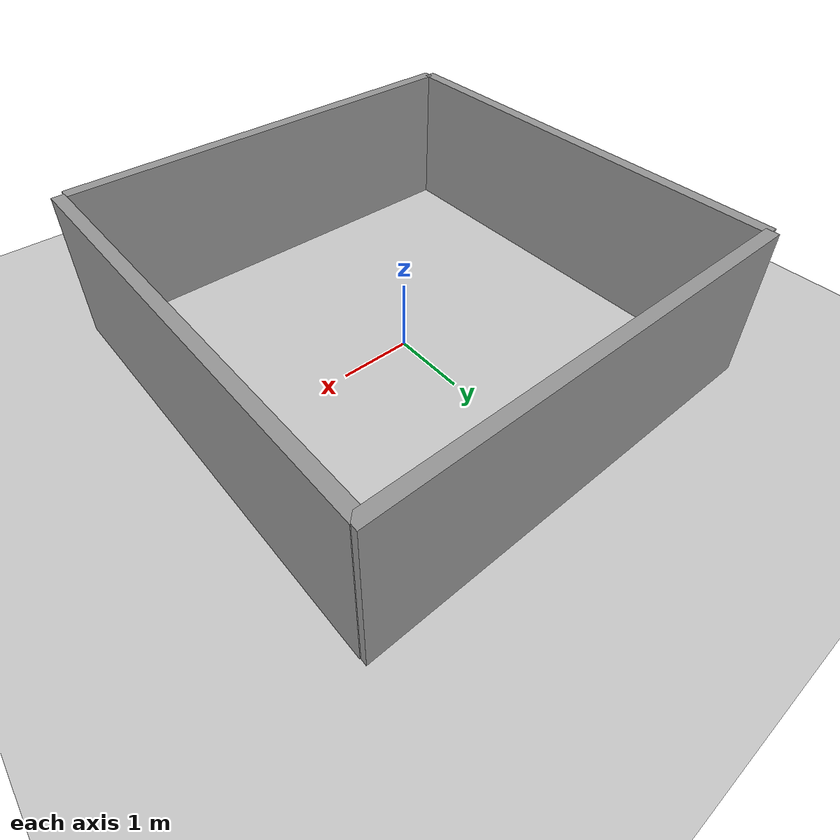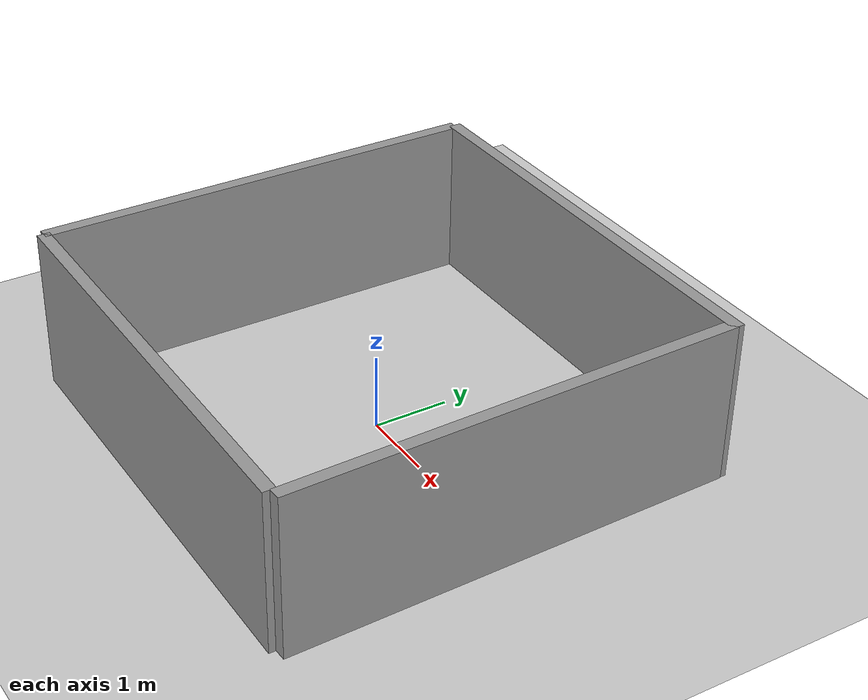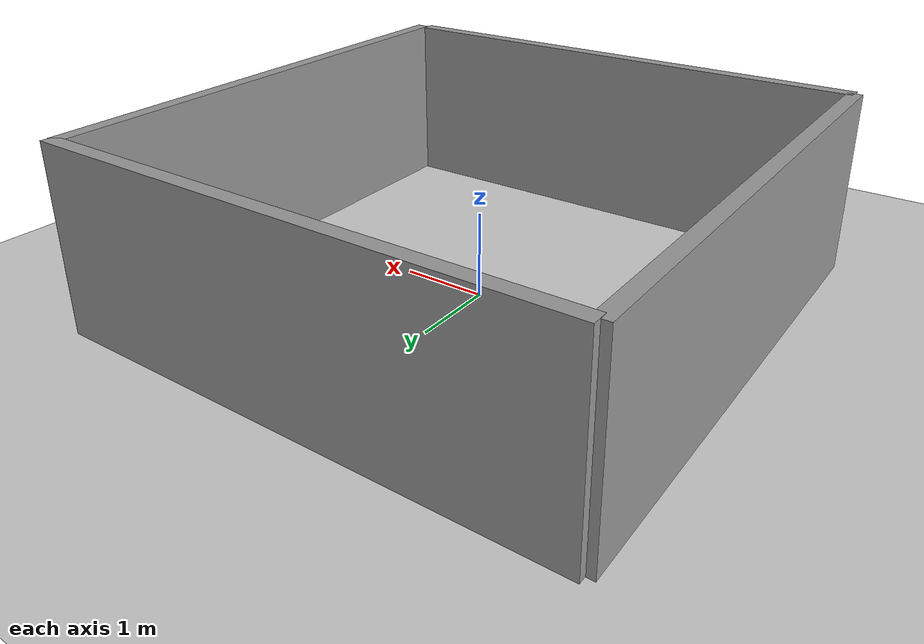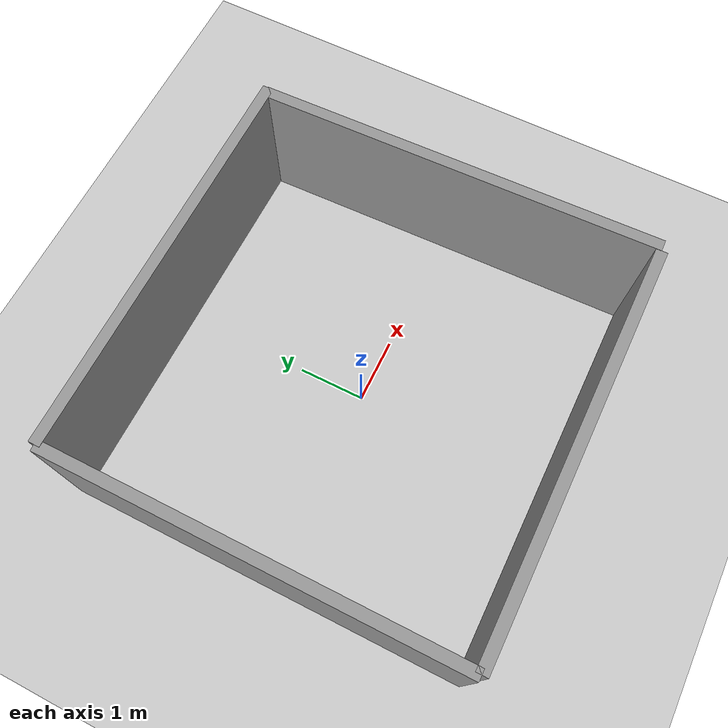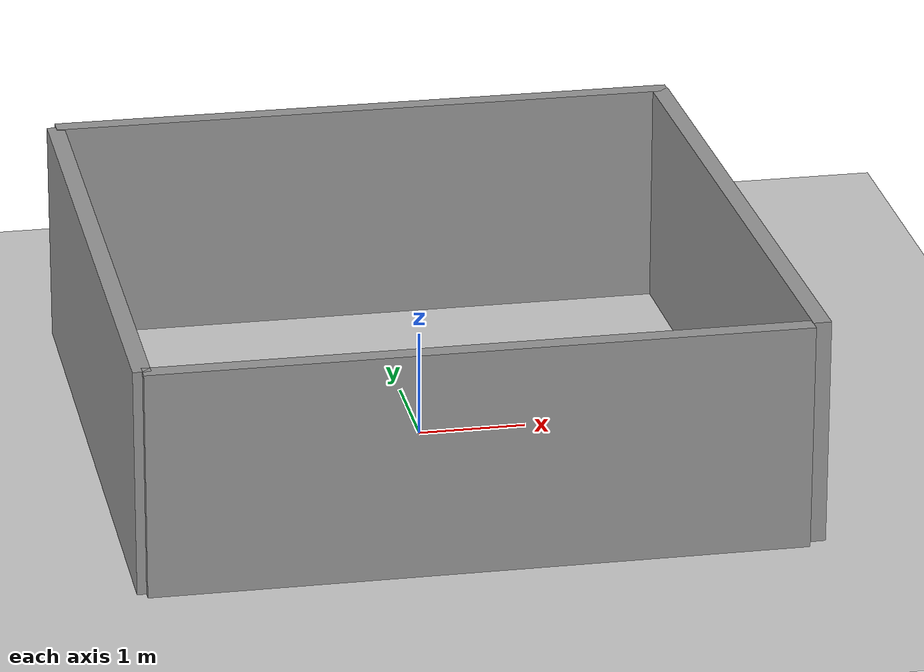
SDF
<sdf version="1.6">
 <world name="default">
  <light name="sun" type="directional">
   <pose>0 0 10 0 -0 0</pose>
   <diffuse>0.8 0.8 0.8 1</diffuse>
   <specular>0.2 0.2 0.2 1</specular>
   <attenuation>
    <range>1000</range>
    <constant>0.9</constant>
    <linear>0.01</linear>
    <quadratic>0.001</quadratic>
   </attenuation>
   <direction>-0.5 0.1 -0.9</direction>
  </light>
  <plugin name="ros_interface_plugin" filename="gazebo_ros_interface_plugin.so"/>
  <plugin name="gazebo_octomap" filename="gazebo_to_octomap_plugin.so"/>
  <model name="ground_plane">
   <static>1</static>
   <link name="link">
    <collision name="collision">
     <geometry><plane><normal>0 0 1</normal><size>100 100</size></plane></geometry>
     <surface>
      <contact><collide_bitmask>65535</collide_bitmask></contact>
      <friction><ode><mu>100</mu><mu2>50</mu2></ode></friction>
     </surface>
    </collision>
    <visual name="visual">
     <cast_shadows>0</cast_shadows>
     <geometry><plane><normal>0 0 1</normal><size>100 100</size></plane></geometry>
     <material>
      <script><uri>file://media/materials/scripts/gazebo.material</uri><name>Gazebo/Grey</name></script>
     </material>
    </visual>
   </link>
  </model>
  <gravity>0 0 -9.8</gravity>
  <magnetic_field>6e-06 2.3e-05 -4.2e-05</magnetic_field>
  <atmosphere type="adiabatic"/>
  <physics name="default_physics" default="0" type="ode">
   <max_step_size>0.001</max_step_size>
   <real_time_factor>1</real_time_factor>
   <real_time_update_rate>1000</real_time_update_rate>
  </physics>
  <scene><ambient>0.4 0.4 0.4 1</ambient><background>0.7 0.7 0.7 1</background><shadows>1</shadows></scene>
  <audio><device>default</device></audio>
  <spherical_coordinates>
   <surface_model>EARTH_WGS84</surface_model>
   <latitude_deg>0</latitude_deg>
   <longitude_deg>0</longitude_deg>
   <elevation>0</elevation>
   <heading_deg>0</heading_deg>
  </spherical_coordinates>
  <model name="unit_box">
   <pose>-3 0 1.06381 -0.00095 2.4e-05 0</pose>
   <link name="unit_box::link">
    <inertial>
     <mass>1</mass>
     <inertia>
      <ixx>0.166667</ixx>
      <ixy>0</ixy>
      <ixz>0</ixz>
      <iyy>0.166667</iyy>
      <iyz>0</iyz>
      <izz>0.166667</izz>
     </inertia>
    </inertial>
    <collision name="collision"><geometry><box><size>0.16645 5.99333 2.1333</size></box></geometry></collision>
    <visual name="visual">
     <geometry><box><size>0.16645 5.99333 2.1333</size></box></geometry>
     <material>
      <script><name>Gazebo/Grey</name><uri>file://media/materials/scripts/gazebo.material</uri></script>
     </material>
    </visual>
   </link>
  </model>
  <model name="unit_box_clone">
   <pose>3 -7e-06 1.06381 -0.00095 2.4e-05 0.025628</pose>
   <link name="unit_box::link">
    <inertial>
     <mass>1</mass>
     <inertia>
      <ixx>0.166667</ixx>
      <ixy>0</ixy>
      <ixz>0</ixz>
      <iyy>0.166667</iyy>
      <iyz>0</iyz>
      <izz>0.166667</izz>
     </inertia>
    </inertial>
    <collision name="collision"><geometry><box><size>0.16645 5.99333 2.1333</size></box></geometry></collision>
    <visual name="visual">
     <geometry><box><size>0.16645 5.99333 2.1333</size></box></geometry>
     <material>
      <script><name>Gazebo/Grey</name><uri>file://media/materials/scripts/gazebo.material</uri></script>
     </material>
    </visual>
   </link>
  </model>
  <model name="unit_box_clone_clone">
   <pose>0 -3 1.06381 0.000949 -2.4e-05 1.57</pose>
   <link name="unit_box::link">
    <inertial>
     <mass>1</mass>
     <inertia>
      <ixx>0.166667</ixx>
      <ixy>0</ixy>
      <ixz>0</ixz>
      <iyy>0.166667</iyy>
      <iyz>0</iyz>
      <izz>0.166667</izz>
     </inertia>
    </inertial>
    <collision name="collision"><geometry><box><size>0.16645 5.99333 2.1333</size></box></geometry></collision>
    <visual name="visual">
     <geometry><box><size>0.16645 5.99333 2.1333</size></box></geometry>
     <material>
      <script><name>Gazebo/Grey</name><uri>file://media/materials/scripts/gazebo.material</uri></script>
     </material>
    </visual>
   </link>
  </model>
  <model name="unit_box_clone_clone_clone">
   <pose>0 3 1.06381 0.000949 -2.4e-05 1.57</pose>
   <link name="unit_box::link">
    <inertial>
     <mass>1</mass>
     <inertia>
      <ixx>0.166667</ixx>
      <ixy>0</ixy>
      <ixz>0</ixz>
      <iyy>0.166667</iyy>
      <iyz>0</iyz>
      <izz>0.166667</izz>
     </inertia>
    </inertial>
    <collision name="collision"><geometry><box><size>0.16645 5.99333 2.1333</size></box></geometry></collision>
    <visual name="visual">
     <geometry><box><size>0.16645 5.99333 2.1333</size></box></geometry>
     <material>
      <script><name>Gazebo/Grey</name><uri>file://media/materials/scripts/gazebo.material</uri></script>
     </material>
    </visual>
   </link>
  </model>
 </world>
</sdf>
